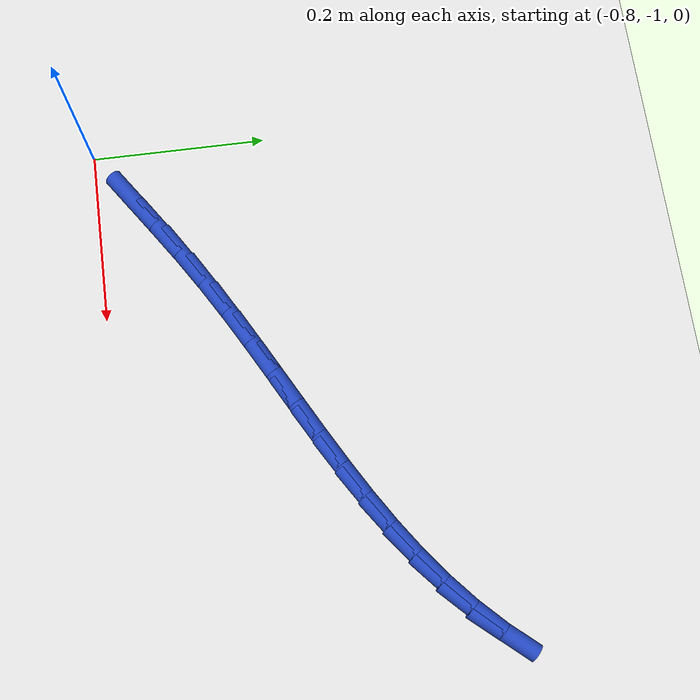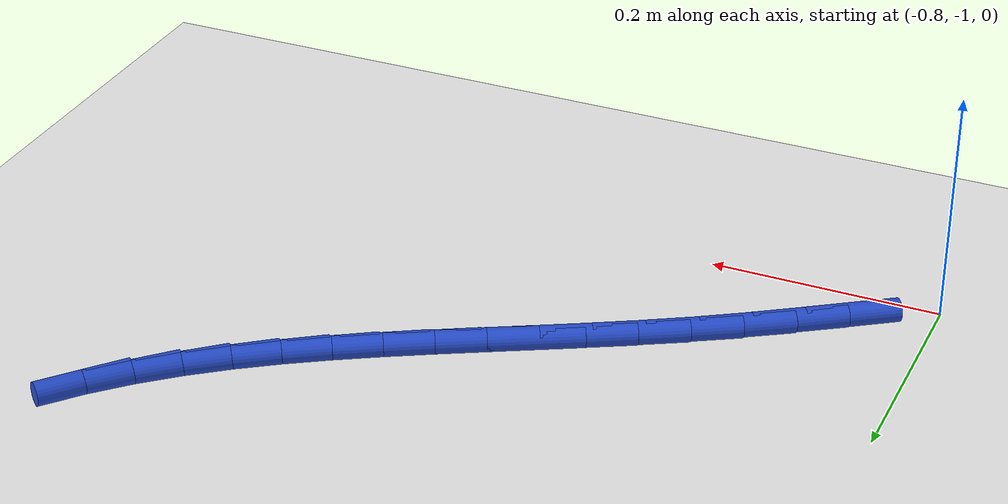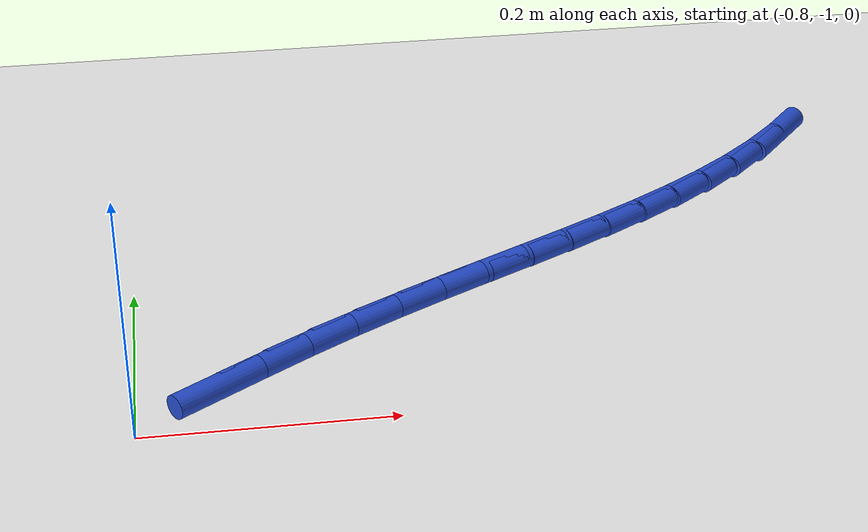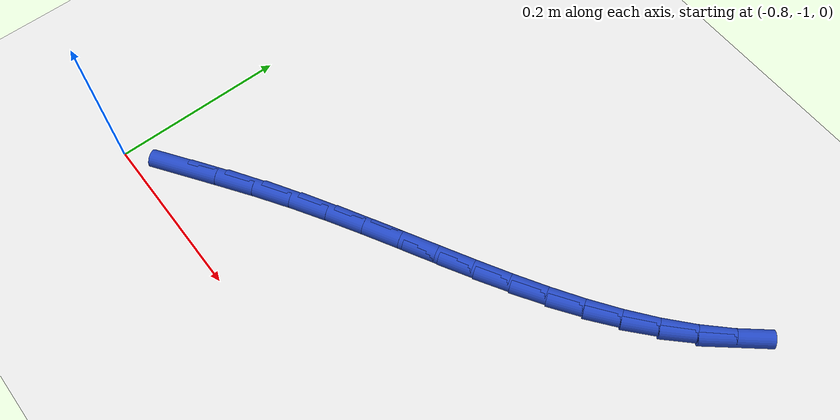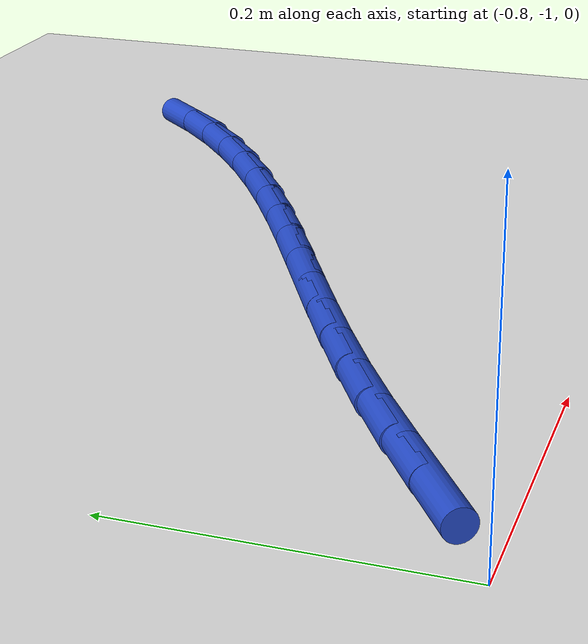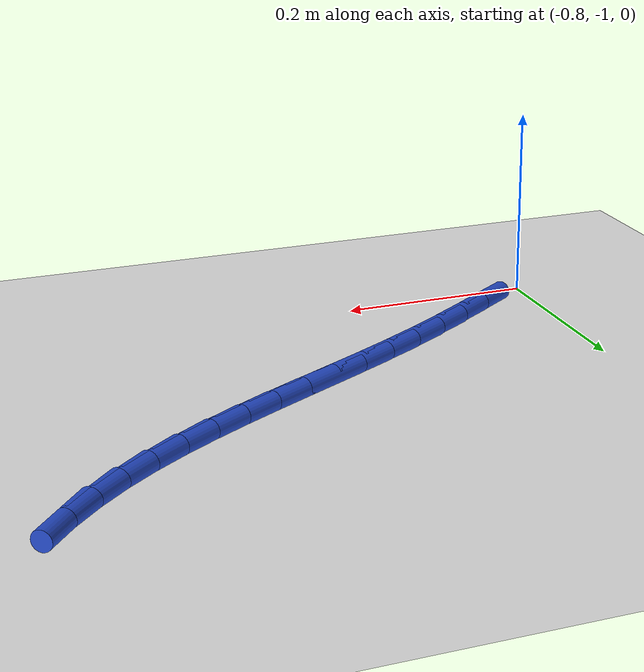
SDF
<sdf version="1.6">
 <world name="default">
  <model name="ground_plane">
   <static>1</static>
   <link name="link">
    <collision name="collision">
     <geometry><plane><normal>0 0 1</normal><size>100 100</size></plane></geometry>
     <surface><friction><ode><mu>100</mu><mu2>50</mu2></ode></friction></surface>
    </collision>
    <visual name="visual">
     <cast_shadows>0</cast_shadows>
     <geometry><plane><normal>0 0 1</normal><size>100 100</size></plane></geometry>
     <material>
      <script><uri>file://media/materials/scripts/gazebo.material</uri><name>Gazebo/WhiteGlow</name></script>
     </material>
    </visual>
   </link>
  </model>
  <model name="line">
   <link name="link_159">
    <pose>-0.7367394158158926 -0.9560191049957312 0.01 0 1.57 0.6004289838801486</pose>
    <collision name="collision">
     <geometry><cylinder><radius>0.01</radius><length>0.08</length></cylinder></geometry>
    </collision>
    <visual name="visual">
     <material>
      <script><name>Gazebo/Blue</name><uri>file://media/materials/scripts/gazebo.material</uri></script>
     </material>
     <geometry><cylinder><radius>0.01</radius><length>0.08</length></cylinder></geometry>
    </visual>
   </link>
   <link name="link_160">
    <pose>-0.6998640704084877 -0.9307680941928974 0.01 0 1.57 0.5904573954834345</pose>
    <collision name="collision">
     <geometry><cylinder><radius>0.01</radius><length>0.08</length></cylinder></geometry>
    </collision>
    <visual name="visual">
     <material>
      <script><name>Gazebo/Blue</name><uri>file://media/materials/scripts/gazebo.material</uri></script>
     </material>
     <geometry><cylinder><radius>0.01</radius><length>0.08</length></cylinder></geometry>
    </visual>
   </link>
   <link name="link_161">
    <pose>-0.6627557403845844 -0.9058974124502789 0.01 0 1.57 0.5641773482555471</pose>
    <collision name="collision">
     <geometry><cylinder><radius>0.01</radius><length>0.08</length></cylinder></geometry>
    </collision>
    <visual name="visual">
     <material>
      <script><name>Gazebo/Blue</name><uri>file://media/materials/scripts/gazebo.material</uri></script>
     </material>
     <geometry><cylinder><radius>0.01</radius><length>0.08</length></cylinder></geometry>
    </visual>
   </link>
   <link name="link_162">
    <pose>-0.62534734118815 -0.8822259695959193 0.01 0 1.57 0.5346196933168885</pose>
    <collision name="collision">
     <geometry><cylinder><radius>0.01</radius><length>0.08</length></cylinder></geometry>
    </collision>
    <visual name="visual">
     <material>
      <script><name>Gazebo/Blue</name><uri>file://media/materials/scripts/gazebo.material</uri></script>
     </material>
     <geometry><cylinder><radius>0.01</radius><length>0.08</length></cylinder></geometry>
    </visual>
   </link>
   <link name="link_163">
    <pose>-0.5877114726348099 -0.8599402841571754 0.01 0 1.57 0.5126645019665836</pose>
    <collision name="collision">
     <geometry><cylinder><radius>0.01</radius><length>0.08</length></cylinder></geometry>
    </collision>
    <visual name="visual">
     <material>
      <script><name>Gazebo/Blue</name><uri>file://media/materials/scripts/gazebo.material</uri></script>
     </material>
     <geometry><cylinder><radius>0.01</radius><length>0.08</length></cylinder></geometry>
    </visual>
   </link>
   <link name="link_164">
    <pose>-0.5500302726895139 -0.8387309639742949 0.01 0 1.57 0.4989048604102865</pose>
    <collision name="collision">
     <geometry><cylinder><radius>0.01</radius><length>0.08</length></cylinder></geometry>
    </collision>
    <visual name="visual">
     <material>
      <script><name>Gazebo/Blue</name><uri>file://media/materials/scripts/gazebo.material</uri></script>
     </material>
     <geometry><cylinder><radius>0.01</radius><length>0.08</length></cylinder></geometry>
    </visual>
   </link>
   <link name="link_165">
    <pose>-0.512488815539125 -0.8182753237669519 0.01 0 1.57 0.49362711728019726</pose>
    <collision name="collision">
     <geometry><cylinder><radius>0.01</radius><length>0.08</length></cylinder></geometry>
    </collision>
    <visual name="visual">
     <material>
      <script><name>Gazebo/Blue</name><uri>file://media/materials/scripts/gazebo.material</uri></script>
     </material>
     <geometry><cylinder><radius>0.01</radius><length>0.08</length></cylinder></geometry>
    </visual>
   </link>
   <link name="link_166">
    <pose>-0.47527217537050687 -0.7982506782548211 0.01 0 1.57 0.49712838311216256</pose>
    <collision name="collision">
     <geometry><cylinder><radius>0.01</radius><length>0.08</length></cylinder></geometry>
    </collision>
    <visual name="visual">
     <material>
      <script><name>Gazebo/Blue</name><uri>file://media/materials/scripts/gazebo.material</uri></script>
     </material>
     <geometry><cylinder><radius>0.01</radius><length>0.08</length></cylinder></geometry>
    </visual>
   </link>
   <link name="link_167">
    <pose>-0.43856542637052154 -0.7783343421575757 0.01 0 1.57 0.5097293733128183</pose>
    <collision name="collision">
     <geometry><cylinder><radius>0.01</radius><length>0.08</length></cylinder></geometry>
    </collision>
    <visual name="visual">
     <material>
      <script><name>Gazebo/Blue</name><uri>file://media/materials/scripts/gazebo.material</uri></script>
     </material>
     <geometry><cylinder><radius>0.01</radius><length>0.08</length></cylinder></geometry>
    </visual>
   </link>
   <link name="link_168">
    <pose>-0.4025536427260324 -0.7582036301948899 0.01 0 1.57 0.5317672331651441</pose>
    <collision name="collision">
     <geometry><cylinder><radius>0.01</radius><length>0.08</length></cylinder></geometry>
    </collision>
    <visual name="visual">
     <material>
      <script><name>Gazebo/Blue</name><uri>file://media/materials/scripts/gazebo.material</uri></script>
     </material>
     <geometry><cylinder><radius>0.01</radius><length>0.08</length></cylinder></geometry>
    </visual>
   </link>
   <link name="link_169">
    <pose>-0.36742189862390273 -0.737535857086438 0.01 0 1.57 0.5635628467515932</pose>
    <collision name="collision">
     <geometry><cylinder><radius>0.01</radius><length>0.08</length></cylinder></geometry>
    </collision>
    <visual name="visual">
     <material>
      <script><name>Gazebo/Blue</name><uri>file://media/materials/scripts/gazebo.material</uri></script>
     </material>
     <geometry><cylinder><radius>0.01</radius><length>0.08</length></cylinder></geometry>
    </visual>
   </link>
   <link name="link_170">
    <pose>-0.3333552682509957 -0.7160083375518939 0.01 0 1.57 0.6053566836450822</pose>
    <collision name="collision">
     <geometry><cylinder><radius>0.01</radius><length>0.08</length></cylinder></geometry>
    </collision>
    <visual name="visual">
     <material>
      <script><name>Gazebo/Blue</name><uri>file://media/materials/scripts/gazebo.material</uri></script>
     </material>
     <geometry><cylinder><radius>0.01</radius><length>0.08</length></cylinder></geometry>
    </visual>
   </link>
   <link name="link_171">
    <pose>-0.3005388257941741 -0.6932983863109315 0.01 0 1.57 0.6572093526632803</pose>
    <collision name="collision">
     <geometry><cylinder><radius>0.01</radius><length>0.08</length></cylinder></geometry>
    </collision>
    <visual name="visual">
     <material>
      <script><name>Gazebo/Blue</name><uri>file://media/materials/scripts/gazebo.material</uri></script>
     </material>
     <geometry><cylinder><radius>0.01</radius><length>0.08</length></cylinder></geometry>
    </visual>
   </link>
   <link name="link_172">
    <pose>-0.2691576454403019 -0.6690833180832259 0.01 0 1.57 0.7188705706098402</pose>
    <collision name="collision">
     <geometry><cylinder><radius>0.01</radius><length>0.08</length></cylinder></geometry>
    </collision>
    <visual name="visual">
     <material>
      <script><name>Gazebo/Blue</name><uri>file://media/materials/scripts/gazebo.material</uri></script>
     </material>
     <geometry><cylinder><radius>0.01</radius><length>0.08</length></cylinder></geometry>
    </visual>
   </link>
   <link name="link_173">
    <pose>-0.2393968013762407 -0.6430404475884494 0.01 0 1.57 0.7896355302913621</pose>
    <collision name="collision">
     <geometry><cylinder><radius>0.01</radius><length>0.08</length></cylinder></geometry>
    </collision>
    <visual name="visual">
     <material>
      <script><name>Gazebo/Blue</name><uri>file://media/materials/scripts/gazebo.material</uri></script>
     </material>
     <geometry><cylinder><radius>0.01</radius><length>0.08</length></cylinder></geometry>
    </visual>
   </link>
   <link name="link_174">
    <pose>-0.2114413677888543 -0.614847089546277 0.01 0 1.57 0.8659603877923124</pose>
    <collision name="collision">
     <geometry><cylinder><radius>0.01</radius><length>0.08</length></cylinder></geometry>
    </collision>
    <visual name="visual">
     <material>
      <script><name>Gazebo/Blue</name><uri>file://media/materials/scripts/gazebo.material</uri></script>
     </material>
     <geometry><cylinder><radius>0.01</radius><length>0.08</length></cylinder></geometry>
    </visual>
   </link>
  </model>
 </world>
</sdf>
